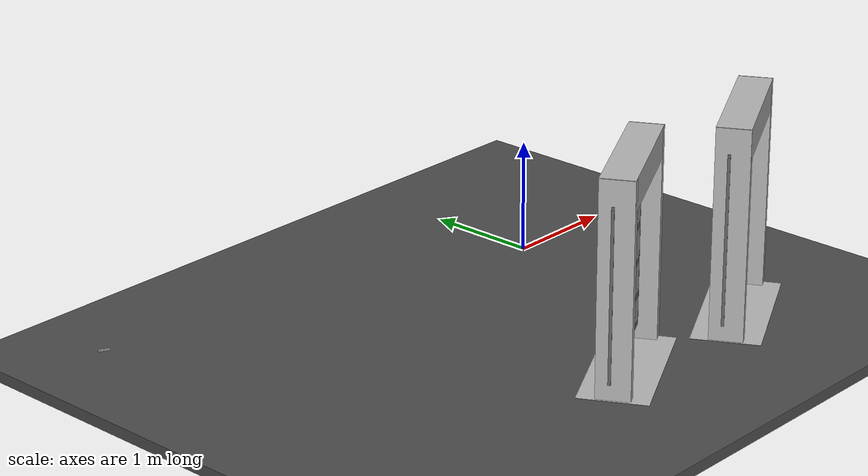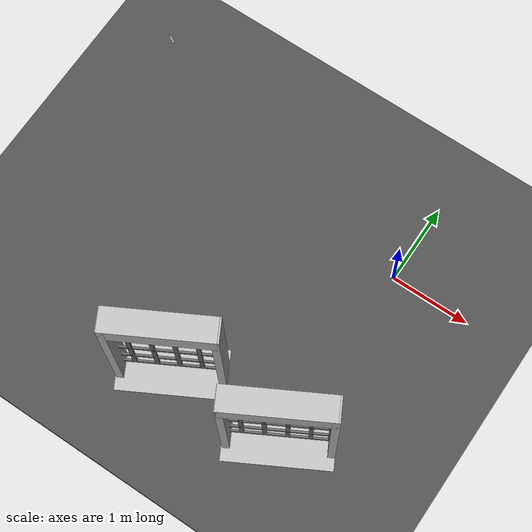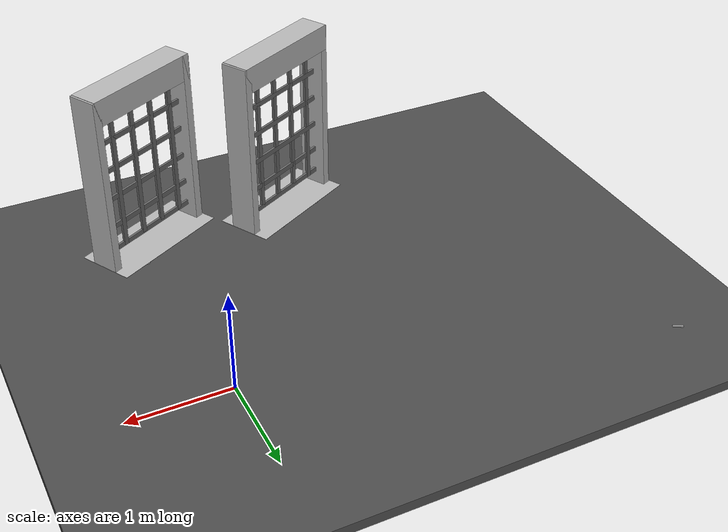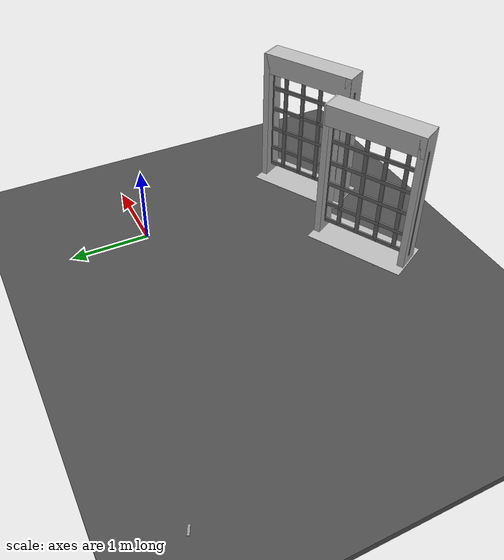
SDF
<sdf version="1.6">
 <world name="default">
  <light name="sun" type="directional">
   <pose>0 0 15 0 -0 0</pose>
   <diffuse>0.8 0.8 0.8 1</diffuse>
   <specular>0.2 0.2 0.2 1</specular>
   <attenuation>
    <range>1000</range>
    <constant>0.9</constant>
    <linear>0.01</linear>
    <quadratic>0.001</quadratic>
   </attenuation>
   <direction>-0.5 0.1 -0.9</direction>
  </light>
  <model name="ground_plane">
   <static>1</static>
   <link name="link">
    <collision name="collision">
     <geometry><plane><normal>0 0 1</normal><size>100 100</size></plane></geometry>
     <surface><friction><ode><mu>100</mu><mu2>50</mu2></ode></friction></surface>
    </collision>
    <visual name="visual">
     <transparency>1</transparency>
     <cast_shadows>0</cast_shadows>
     <geometry><plane><normal>0 0 1</normal><size>100 100</size></plane></geometry>
     <material>
      <script><uri>file://media/materials/scripts/gazebo.material</uri><name>Gazebo/Grey</name></script>
     </material>
    </visual>
   </link>
  </model>
  <gravity>0 0 -9.8</gravity>
  <magnetic_field>6e-06 2.3e-05 -4.2e-05</magnetic_field>
  <atmosphere type="adiabatic"/>
  <physics name="default_physics" default="0" type="ode">
   <max_step_size>0.001</max_step_size>
   <real_time_factor>1</real_time_factor>
   <real_time_update_rate>1000</real_time_update_rate>
  </physics>
  <scene><ambient>0.4 0.4 0.4 1</ambient><background>0.7 0.7 0.7 1</background><shadows>1</shadows></scene>
  <audio><device>default</device></audio>
  <spherical_coordinates>
   <surface_model>EARTH_WGS84</surface_model>
   <latitude_deg>0</latitude_deg>
   <longitude_deg>0</longitude_deg>
   <elevation>0</elevation>
   <heading_deg>0</heading_deg>
  </spherical_coordinates>
  <model name="stone_10_2_5_1cm">
   <link name="link">
    <pose>0 0 0.005 0 -0 0</pose>
    <inertial>
     <mass>0.0628</mass>
     <inertia>
      <ixx>3.79417e-06</ixx>
      <ixy>0</ixy>
      <ixz>0</ixz>
      <iyy>5.28567e-05</iyy>
      <iyz>0</iyz>
      <izz>5.56042e-05</izz>
     </inertia>
    </inertial>
    <collision name="collision">
     <geometry><box><size>0.1 0.025 0.01</size></box></geometry>
     <surface>
      <contact>
       <poissons_ratio>0.15</poissons_ratio>
       <elastic_modulus>8e+10</elastic_modulus>
       <ode><kp>100000</kp><kd>100</kd><max_vel>100</max_vel><min_depth>0.001</min_depth></ode>
      </contact>
      <friction>
       <torsional>
        <coefficient>1</coefficient>
        <use_patch_radius>0</use_patch_radius>
        <surface_radius>0.01</surface_radius>
       </torsional>
      </friction>
     </surface>
    </collision>
    <visual name="visual">
     <geometry><box><size>0.1 0.025 0.01</size></box></geometry>
     <material>
      <script><uri>file://media/materials/scripts/gazebo.material</uri><name>Gazebo/Grey</name></script>
     </material>
    </visual>
   </link>
   <pose>-3.93451 1.07422 0.058998 -3.14159 -0 2.65904</pose>
  </model>
  <model name="asphalt_plane">
   <static>1</static>
   <link name="link">
    <collision name="collision"><geometry><box><size>20 20 0.1</size></box></geometry></collision>
    <visual name="visual">
     <cast_shadows>0</cast_shadows>
     <geometry><box><size>20 20 0.1</size></box></geometry>
     <material>
      <script>
       <uri>model://asphalt_plane/materials/scripts</uri>
       <uri>model://asphalt_plane/materials/textures</uri>
       <name>vrc/asphalt</name>
      </script>
     </material>
    </visual>
   </link>
   <pose>-1.00719 3.20006 0 0 -0 0</pose>
  </model>
  <model name="frc2016_portcullis">
   <link name="base">
    <inertial>
     <mass>50</mass>
     <pose>0 0 1.02941 0 -0 0</pose>
     <inertia><ixx>3.81711</ixx><ixy>0</ixy><ixz>0</ixz><iyy>4.87698</iyy><iyz>0</iyz><izz>1.6283</izz></inertia>
    </inertial>
    <visual name="platform">
     <pose>0 0 0.07284 0 -0 0</pose>
     <geometry><box><size>1.27 0.5842 0.003175</size></box></geometry>
    </visual>
    <collision name="platform">
     <pose>0 0 0.07284 0 -0 0</pose>
     <geometry><box><size>1.27 0.5842 0.003175</size></box></geometry>
    </collision>
    <visual name="left_column">
     <pose>0.59284 0 0.99042 0 -0 0</pose>
     <geometry><box><size>0.08375 0.28575 1.83198</size></box></geometry>
    </visual>
    <collision name="left_column">
     <pose>0.59284 0 0.99042 0 -0 0</pose>
     <geometry><box><size>0.08375 0.28575 1.83198</size></box></geometry>
    </collision>
    <visual name="right_column">
     <pose>-0.57759 0 0.99042 0 -0 0</pose>
     <geometry><box><size>0.08375 0.28575 1.83198</size></box></geometry>
    </visual>
    <collision name="right_column">
     <pose>-0.57759 0 0.99042 0 -0 0</pose>
     <geometry><box><size>0.08375 0.28575 1.83198</size></box></geometry>
    </collision>
    <visual name="top">
     <pose>-0.00034 0 1.77722 0 -0 0</pose>
     <geometry><box><size>1.22962 0.28575 0.26657</size></box></geometry>
    </visual>
    <collision name="top">
     <pose>-0.00034 0 1.77722 0 -0 0</pose>
     <geometry><box><size>1.22962 0.28575 0.26657</size></box></geometry>
    </collision>
    <visual name="castor1">
     <pose>-0.45651 -0.16234 0.03272 0 -0 0</pose>
     <geometry><sphere><radius>0.03272</radius></sphere></geometry>
    </visual>
    <collision name="castor1">
     <pose>-0.45651 -0.16234 0.03272 0 -0 0</pose>
     <geometry><sphere><radius>0.03272</radius></sphere></geometry>
    </collision>
    <visual name="castor2">
     <pose>-0.27883 0.21836 0.03272 0 -0 0</pose>
     <geometry><sphere><radius>0.03272</radius></sphere></geometry>
    </visual>
    <collision name="castor2">
     <pose>-0.27883 0.21836 0.03272 0 -0 0</pose>
     <geometry><sphere><radius>0.03272</radius></sphere></geometry>
    </collision>
    <visual name="castor3">
     <pose>0.28083 0.21906 0.03272 0 -0 0</pose>
     <geometry><sphere><radius>0.03272</radius></sphere></geometry>
    </visual>
    <collision name="castor3">
     <pose>0.28083 0.21906 0.03272 0 -0 0</pose>
     <geometry><sphere><radius>0.03272</radius></sphere></geometry>
    </collision>
    <visual name="castor4">
     <pose>0.45871 -0.16186 0.03272 0 -0 0</pose>
     <geometry><sphere><radius>0.03272</radius></sphere></geometry>
    </visual>
    <collision name="castor4">
     <pose>0.45871 -0.16186 0.03272 0 -0 0</pose>
     <geometry><sphere><radius>0.03272</radius></sphere></geometry>
    </collision>
   </link>
   <link name="gate">
    <pose>-0.0287 0.02885 0.93327 0 -0 0</pose>
    <inertial>
     <mass>2</mass>
     <inertia><ixx>3.81711</ixx><ixy>0</ixy><ixz>0</ixz><iyy>4.87698</iyy><iyz>0</iyz><izz>1.6283</izz></inertia>
    </inertial>
    <collision name="collision"><geometry><box><size>1.1938 0.02496 1.45732</size></box></geometry></collision>
    <visual name="horz_1">
     <pose>0 0 -0.70326 0 -0 0</pose>
     <geometry><box><size>1.1938 0.02496 0.0508</size></box></geometry>
     <material><ambient>0.4 0.4 0.4 1</ambient><diffuse>0.4 0.4 0.4 1</diffuse></material>
    </visual>
    <visual name="horz_2">
     <pose>0 0 -0.44926 0 -0 0</pose>
     <geometry><box><size>1.1938 0.02496 0.0508</size></box></geometry>
     <material><ambient>0.4 0.4 0.4 1</ambient><diffuse>0.4 0.4 0.4 1</diffuse></material>
    </visual>
    <visual name="horz_3">
     <pose>0 0 -0.14517 0 -0 0</pose>
     <geometry><box><size>1.1938 0.02496 0.0508</size></box></geometry>
     <material><ambient>0.4 0.4 0.4 1</ambient><diffuse>0.4 0.4 0.4 1</diffuse></material>
    </visual>
    <visual name="horz_4">
     <pose>0 0 0.16034 0 -0 0</pose>
     <geometry><box><size>1.1938 0.02496 0.0508</size></box></geometry>
     <material><ambient>0.4 0.4 0.4 1</ambient><diffuse>0.4 0.4 0.4 1</diffuse></material>
    </visual>
    <visual name="horz_5">
     <pose>0 0 0.46514 0 -0 0</pose>
     <geometry><box><size>1.1938 0.02496 0.0508</size></box></geometry>
     <material><ambient>0.4 0.4 0.4 1</ambient><diffuse>0.4 0.4 0.4 1</diffuse></material>
    </visual>
    <visual name="horz_6">
     <pose>0 0 0.72994 0 -0 0</pose>
     <geometry><box><size>1.1938 0.02496 0.0508</size></box></geometry>
     <material><ambient>0.4 0.4 0.4 1</ambient><diffuse>0.4 0.4 0.4 1</diffuse></material>
    </visual>
    <visual name="vert_1">
     <pose>-0.58448 0 0 0 -0 0</pose>
     <geometry><box><size>0.02495 0.02496 1.45732</size></box></geometry>
     <material><ambient>0.4 0.4 0.4 1</ambient><diffuse>0.4 0.4 0.4 1</diffuse></material>
    </visual>
    <visual name="vert_2">
     <pose>-0.38128 0 0 0 -0 0</pose>
     <geometry><box><size>0.0508 0.02496 1.45732</size></box></geometry>
     <material><ambient>0.4 0.4 0.4 1</ambient><diffuse>0.4 0.4 0.4 1</diffuse></material>
    </visual>
    <visual name="vert_3">
     <pose>-0.12728 0 0 0 -0 0</pose>
     <geometry><box><size>0.0508 0.02496 1.45732</size></box></geometry>
     <material><ambient>0.4 0.4 0.4 1</ambient><diffuse>0.4 0.4 0.4 1</diffuse></material>
    </visual>
    <visual name="vert_4">
     <pose>0.12672 0 0 0 -0 0</pose>
     <geometry><box><size>0.0508 0.02496 1.45732</size></box></geometry>
     <material><ambient>0.4 0.4 0.4 1</ambient><diffuse>0.4 0.4 0.4 1</diffuse></material>
    </visual>
    <visual name="vert_5">
     <pose>0.38072 0 0 0 -0 0</pose>
     <geometry><box><size>0.0508 0.02496 1.45732</size></box></geometry>
     <material><ambient>0.4 0.4 0.4 1</ambient><diffuse>0.4 0.4 0.4 1</diffuse></material>
    </visual>
    <visual name="vert_6">
     <pose>0.58392 0 0 0 -0 0</pose>
     <geometry><box><size>0.02495 0.02496 1.45732</size></box></geometry>
     <material><ambient>0.4 0.4 0.4 1</ambient><diffuse>0.4 0.4 0.4 1</diffuse></material>
    </visual>
   </link>
   <joint name="joint" type="prismatic">
    <parent>base</parent>
    <child>gate</child>
    <axis>
     <xyz>0 0 1</xyz>
     <limit><lower>0</lower><upper>1</upper></limit>
     <use_parent_model_frame>0</use_parent_model_frame>
     <dynamics><spring_reference>0</spring_reference><spring_stiffness>0</spring_stiffness></dynamics>
    </axis>
   </joint>
   <pose>-0.01766 -2.35516 0.050001 -1e-06 2e-06 0.497303</pose>
  </model>
  <model name="frc2016_portcullis_0">
   <link name="base">
    <inertial>
     <mass>50</mass>
     <pose>0 0 1.02941 0 -0 0</pose>
     <inertia><ixx>3.81711</ixx><ixy>0</ixy><ixz>0</ixz><iyy>4.87698</iyy><iyz>0</iyz><izz>1.6283</izz></inertia>
    </inertial>
    <visual name="platform">
     <pose>0 0 0.07284 0 -0 0</pose>
     <geometry><box><size>1.27 0.5842 0.003175</size></box></geometry>
    </visual>
    <collision name="platform">
     <pose>0 0 0.07284 0 -0 0</pose>
     <geometry><box><size>1.27 0.5842 0.003175</size></box></geometry>
    </collision>
    <visual name="left_column">
     <pose>0.59284 0 0.99042 0 -0 0</pose>
     <geometry><box><size>0.08375 0.28575 1.83198</size></box></geometry>
    </visual>
    <collision name="left_column">
     <pose>0.59284 0 0.99042 0 -0 0</pose>
     <geometry><box><size>0.08375 0.28575 1.83198</size></box></geometry>
    </collision>
    <visual name="right_column">
     <pose>-0.57759 0 0.99042 0 -0 0</pose>
     <geometry><box><size>0.08375 0.28575 1.83198</size></box></geometry>
    </visual>
    <collision name="right_column">
     <pose>-0.57759 0 0.99042 0 -0 0</pose>
     <geometry><box><size>0.08375 0.28575 1.83198</size></box></geometry>
    </collision>
    <visual name="top">
     <pose>-0.00034 0 1.77722 0 -0 0</pose>
     <geometry><box><size>1.22962 0.28575 0.26657</size></box></geometry>
    </visual>
    <collision name="top">
     <pose>-0.00034 0 1.77722 0 -0 0</pose>
     <geometry><box><size>1.22962 0.28575 0.26657</size></box></geometry>
    </collision>
    <visual name="castor1">
     <pose>-0.45651 -0.16234 0.03272 0 -0 0</pose>
     <geometry><sphere><radius>0.03272</radius></sphere></geometry>
    </visual>
    <collision name="castor1">
     <pose>-0.45651 -0.16234 0.03272 0 -0 0</pose>
     <geometry><sphere><radius>0.03272</radius></sphere></geometry>
    </collision>
    <visual name="castor2">
     <pose>-0.27883 0.21836 0.03272 0 -0 0</pose>
     <geometry><sphere><radius>0.03272</radius></sphere></geometry>
    </visual>
    <collision name="castor2">
     <pose>-0.27883 0.21836 0.03272 0 -0 0</pose>
     <geometry><sphere><radius>0.03272</radius></sphere></geometry>
    </collision>
    <visual name="castor3">
     <pose>0.28083 0.21906 0.03272 0 -0 0</pose>
     <geometry><sphere><radius>0.03272</radius></sphere></geometry>
    </visual>
    <collision name="castor3">
     <pose>0.28083 0.21906 0.03272 0 -0 0</pose>
     <geometry><sphere><radius>0.03272</radius></sphere></geometry>
    </collision>
    <visual name="castor4">
     <pose>0.45871 -0.16186 0.03272 0 -0 0</pose>
     <geometry><sphere><radius>0.03272</radius></sphere></geometry>
    </visual>
    <collision name="castor4">
     <pose>0.45871 -0.16186 0.03272 0 -0 0</pose>
     <geometry><sphere><radius>0.03272</radius></sphere></geometry>
    </collision>
   </link>
   <link name="gate">
    <pose>-0.0287 0.02885 0.93327 0 -0 0</pose>
    <inertial>
     <mass>2</mass>
     <inertia><ixx>3.81711</ixx><ixy>0</ixy><ixz>0</ixz><iyy>4.87698</iyy><iyz>0</iyz><izz>1.6283</izz></inertia>
    </inertial>
    <collision name="collision"><geometry><box><size>1.1938 0.02496 1.45732</size></box></geometry></collision>
    <visual name="horz_1">
     <pose>0 0 -0.70326 0 -0 0</pose>
     <geometry><box><size>1.1938 0.02496 0.0508</size></box></geometry>
     <material><ambient>0.4 0.4 0.4 1</ambient><diffuse>0.4 0.4 0.4 1</diffuse></material>
    </visual>
    <visual name="horz_2">
     <pose>0 0 -0.44926 0 -0 0</pose>
     <geometry><box><size>1.1938 0.02496 0.0508</size></box></geometry>
     <material><ambient>0.4 0.4 0.4 1</ambient><diffuse>0.4 0.4 0.4 1</diffuse></material>
    </visual>
    <visual name="horz_3">
     <pose>0 0 -0.14517 0 -0 0</pose>
     <geometry><box><size>1.1938 0.02496 0.0508</size></box></geometry>
     <material><ambient>0.4 0.4 0.4 1</ambient><diffuse>0.4 0.4 0.4 1</diffuse></material>
    </visual>
    <visual name="horz_4">
     <pose>0 0 0.16034 0 -0 0</pose>
     <geometry><box><size>1.1938 0.02496 0.0508</size></box></geometry>
     <material><ambient>0.4 0.4 0.4 1</ambient><diffuse>0.4 0.4 0.4 1</diffuse></material>
    </visual>
    <visual name="horz_5">
     <pose>0 0 0.46514 0 -0 0</pose>
     <geometry><box><size>1.1938 0.02496 0.0508</size></box></geometry>
     <material><ambient>0.4 0.4 0.4 1</ambient><diffuse>0.4 0.4 0.4 1</diffuse></material>
    </visual>
    <visual name="horz_6">
     <pose>0 0 0.72994 0 -0 0</pose>
     <geometry><box><size>1.1938 0.02496 0.0508</size></box></geometry>
     <material><ambient>0.4 0.4 0.4 1</ambient><diffuse>0.4 0.4 0.4 1</diffuse></material>
    </visual>
    <visual name="vert_1">
     <pose>-0.58448 0 0 0 -0 0</pose>
     <geometry><box><size>0.02495 0.02496 1.45732</size></box></geometry>
     <material><ambient>0.4 0.4 0.4 1</ambient><diffuse>0.4 0.4 0.4 1</diffuse></material>
    </visual>
    <visual name="vert_2">
     <pose>-0.38128 0 0 0 -0 0</pose>
     <geometry><box><size>0.0508 0.02496 1.45732</size></box></geometry>
     <material><ambient>0.4 0.4 0.4 1</ambient><diffuse>0.4 0.4 0.4 1</diffuse></material>
    </visual>
    <visual name="vert_3">
     <pose>-0.12728 0 0 0 -0 0</pose>
     <geometry><box><size>0.0508 0.02496 1.45732</size></box></geometry>
     <material><ambient>0.4 0.4 0.4 1</ambient><diffuse>0.4 0.4 0.4 1</diffuse></material>
    </visual>
    <visual name="vert_4">
     <pose>0.12672 0 0 0 -0 0</pose>
     <geometry><box><size>0.0508 0.02496 1.45732</size></box></geometry>
     <material><ambient>0.4 0.4 0.4 1</ambient><diffuse>0.4 0.4 0.4 1</diffuse></material>
    </visual>
    <visual name="vert_5">
     <pose>0.38072 0 0 0 -0 0</pose>
     <geometry><box><size>0.0508 0.02496 1.45732</size></box></geometry>
     <material><ambient>0.4 0.4 0.4 1</ambient><diffuse>0.4 0.4 0.4 1</diffuse></material>
    </visual>
    <visual name="vert_6">
     <pose>0.58392 0 0 0 -0 0</pose>
     <geometry><box><size>0.02495 0.02496 1.45732</size></box></geometry>
     <material><ambient>0.4 0.4 0.4 1</ambient><diffuse>0.4 0.4 0.4 1</diffuse></material>
    </visual>
   </link>
   <joint name="joint" type="prismatic">
    <parent>base</parent>
    <child>gate</child>
    <axis>
     <xyz>0 0 1</xyz>
     <limit><lower>0</lower><upper>1</upper></limit>
     <use_parent_model_frame>0</use_parent_model_frame>
     <dynamics><spring_reference>0</spring_reference><spring_stiffness>0</spring_stiffness></dynamics>
    </axis>
   </joint>
   <pose>-1.46641 -2.35998 0.050001 -1e-06 2e-06 0.495836</pose>
  </model>
 </world>
</sdf>
